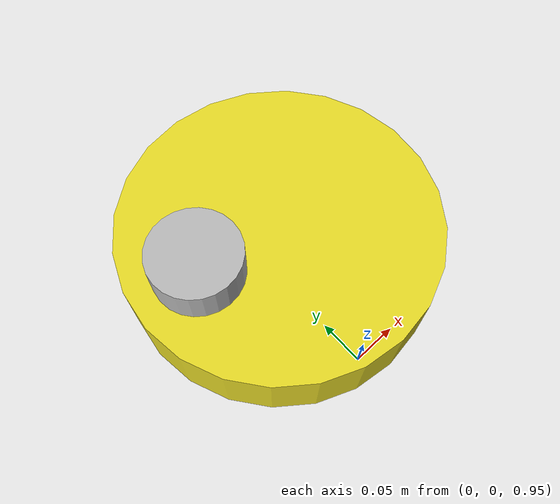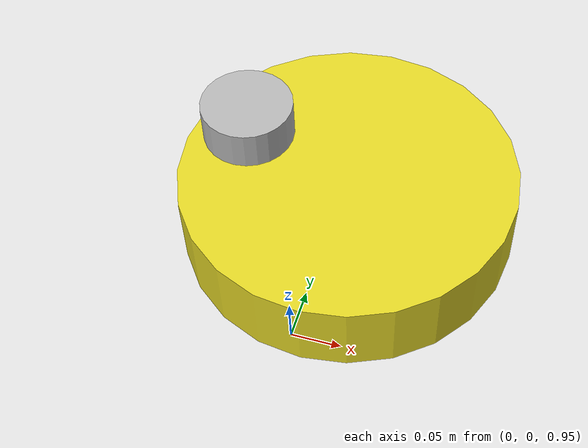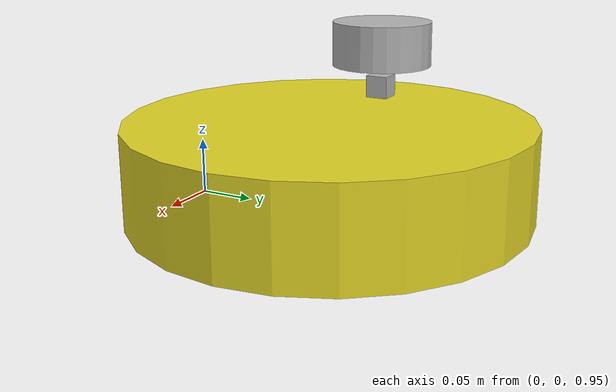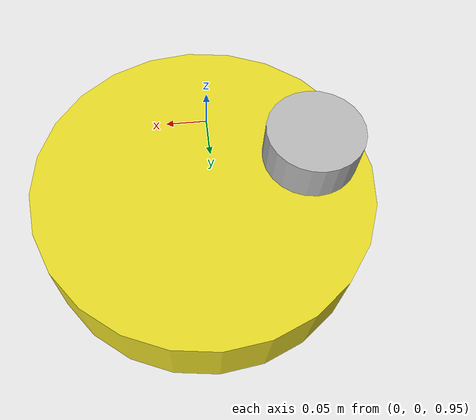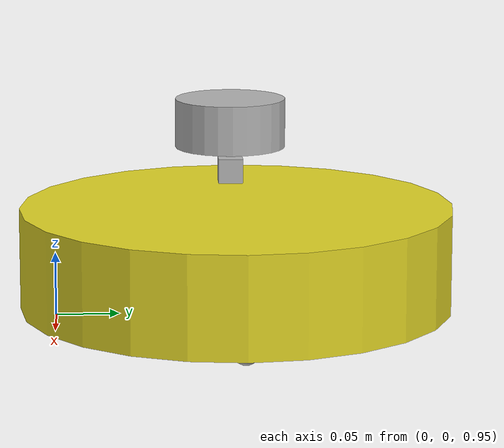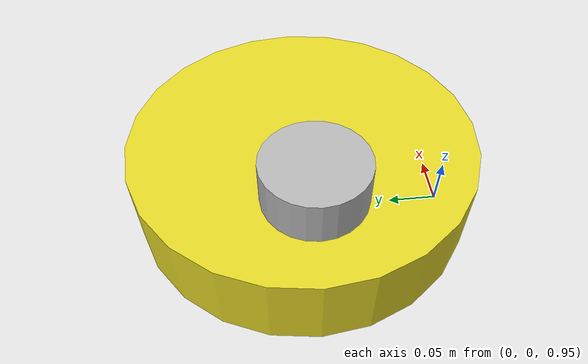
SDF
<sdf version="1.6">
 <world name="default">
  <light name="sun" type="directional">
   <pose>0 0 10 0 -0 0</pose>
   <diffuse>0.8 0.8 0.8 1</diffuse>
   <specular>0.2 0.2 0.2 1</specular>
   <attenuation>
    <range>1000</range>
    <constant>0.9</constant>
    <linear>0.01</linear>
    <quadratic>0.001</quadratic>
   </attenuation>
   <direction>-0.5 0.1 -0.9</direction>
  </light>
  <model name="ground_plane">
   <static>1</static>
   <link name="link">
    <collision name="collision">
     <geometry><plane><normal>0 0 1</normal><size>100 100</size></plane></geometry>
     <surface>
      <contact><collide_bitmask>65535</collide_bitmask></contact>
      <friction><ode><mu>100</mu><mu2>50</mu2></ode></friction>
     </surface>
    </collision>
    <visual name="visual">
     <cast_shadows>0</cast_shadows>
     <geometry><plane><normal>0 0 1</normal><size>100 100</size></plane></geometry>
     <material>
      <script><uri>file://media/materials/scripts/gazebo.material</uri><name>Gazebo/Grey</name></script>
     </material>
    </visual>
   </link>
  </model>
  <physics name="default_physics" default="0" type="ode">
   <max_step_size>0.01</max_step_size>
   <real_time_factor>1</real_time_factor>
   <real_time_update_rate>100</real_time_update_rate>
  </physics>
  <gravity>0 0 -9.8</gravity>
  <magnetic_field>6e-06 2.3e-05 -4.2e-05</magnetic_field>
  <atmosphere type="adiabatic"/>
  <scene><ambient>0.4 0.4 0.4 1</ambient><background>0.7 0.7 0.7 1</background><shadows>1</shadows></scene>
  <audio><device>default</device></audio>
  <spherical_coordinates>
   <surface_model>EARTH_WGS84</surface_model>
   <latitude_deg>0</latitude_deg>
   <longitude_deg>0</longitude_deg>
   <elevation>0</elevation>
   <heading_deg>0</heading_deg>
  </spherical_coordinates>
  <model name="mobile_base">
   <link name="base_link">
    <inertial>
     <pose>-1e-05 0 1e-06 0 -0 0</pose>
     <mass>10.003</mass>
     <inertia>
      <ixx>0.0802938</ixx>
      <ixy>0</ixy>
      <ixz>5.09021e-06</ixz>
      <iyy>0.0802646</iyy>
      <iyz>-3.36272e-19</iyz>
      <izz>0.144551</izz>
     </inertia>
    </inertial>
    <collision name="base_link_fixed_joint_lump__chassis_collision">
     <geometry><cylinder><length>0.08</length><radius>0.17</radius></cylinder></geometry>
    </collision>
    <collision name="base_link_fixed_joint_lump__left_axis_collision_1">
     <pose>0 0.14 -0.02 -1.5708 0 0</pose>
     <geometry><cylinder><length>0.02</length><radius>0.0025</radius></cylinder></geometry>
    </collision>
    <collision name="base_link_fixed_joint_lump__right_axis_collision_2">
     <pose>0 -0.14 -0.02 -1.5708 0 0</pose>
     <geometry><cylinder><length>0.02</length><radius>0.0025</radius></cylinder></geometry>
    </collision>
    <collision name="base_link_fixed_joint_lump__hokuyo_laser_link_collision_3">
     <pose>-0.1016 0 0.0889 0 0 -3.14159</pose>
     <geometry><cylinder><length>0.04</length><radius>0.045</radius></cylinder></geometry>
    </collision>
    <collision name="base_link_fixed_joint_lump__imu_sensor_link_collision_4">
     <pose>-0.1 0 0.05 0 -0 0</pose>
     <geometry><box><size>0.02 0.02 0.02</size></box></geometry>
    </collision>
    <visual name="base_link_fixed_joint_lump__chassis_visual">
     <geometry><cylinder><length>0.08</length><radius>0.17</radius></cylinder></geometry>
     <material>
      <script><name>Gazebo/Yellow</name><uri>file://media/materials/scripts/gazebo.material</uri></script>
     </material>
    </visual>
    <visual name="base_link_fixed_joint_lump__left_axis_visual_1">
     <pose>0 0.14 -0.02 -1.5708 0 0</pose>
     <geometry><cylinder><length>0.02</length><radius>0.0025</radius></cylinder></geometry>
    </visual>
    <visual name="base_link_fixed_joint_lump__right_axis_visual_2">
     <pose>0 -0.14 -0.02 -1.5708 0 0</pose>
     <geometry><cylinder><length>0.02</length><radius>0.0025</radius></cylinder></geometry>
    </visual>
    <visual name="base_link_fixed_joint_lump__hokuyo_laser_link_visual_3">
     <pose>-0.1016 0 0.0889 0 0 -3.14159</pose>
     <geometry><cylinder><length>0.04</length><radius>0.045</radius></cylinder></geometry>
     <material><script><uri>__default__</uri><name>__default__</name></script></material>
    </visual>
    <visual name="base_link_fixed_joint_lump__imu_sensor_link_visual_4">
     <pose>-0.1 0 0.05 0 -0 0</pose>
     <geometry><box><size>0.02 0.02 0.02</size></box></geometry>
     <material><script><uri>__default__</uri><name>__default__</name></script></material>
    </visual>
    <sensor name="head_hokuyo_sensor" type="ray">
     <visualize>0</visualize>
     <update_rate>5</update_rate>
     <ray>
      <scan>
       <horizontal>
        <samples>361</samples>
        <resolution>1</resolution>
        <min_angle>-3.14159</min_angle>
        <max_angle>3.14159</max_angle>
       </horizontal>
       <vertical><samples>1</samples><min_angle>0</min_angle><max_angle>0</max_angle></vertical>
      </scan>
      <range><min>0.2</min><max>5</max><resolution>0.36</resolution></range>
      <noise><type>gaussian</type><mean>0</mean><stddev>0.01</stddev></noise>
     </ray>
     <plugin name="gazebo_ros_head_hokuyo_controller" filename="libgazebo_ros_laser.so">
      <topicName>scan</topicName>
      <frameName>hokuyo_laser_link</frameName>
      <robotNamespace>/</robotNamespace>
     </plugin>
     <pose>-0.1016 0 0.0889 0 0 -3.14159</pose>
    </sensor>
    <sensor name="imu_sensor" type="imu">
     <always_on>1</always_on>
     <update_rate>100</update_rate>
     <visualize>1</visualize>
     <topic>__default_topic__</topic>
     <plugin name="imu_plugin" filename="libgazebo_ros_imu_sensor.so">
      <topicName>imu_data</topicName>
      <bodyName>imu_sensor_link</bodyName>
      <updateRateHZ>10.0</updateRateHZ>
      <gaussianNoise>0.0</gaussianNoise>
      <xyzOffset>0 0 0</xyzOffset>
      <rpyOffset>0 0 0</rpyOffset>
      <frameName>base_link</frameName>
      <robotNamespace>/</robotNamespace>
     </plugin>
     <pose>-0.1 0 0.05 0 -0 0</pose>
    </sensor>
   </link>
   <link name="left_wheel_link">
    <pose>0 0.14 -0.02 0 -0 0</pose>
    <inertial>
     <pose>0 0.01 0 -1.5708 0 0</pose>
     <mass>0.5</mass>
     <inertia>
      <ixx>0.000129167</ixx>
      <ixy>0</ixy>
      <ixz>0</ixz>
      <iyy>0.000129167</iyy>
      <iyz>0</iyz>
      <izz>3.75e-05</izz>
     </inertia>
    </inertial>
    <collision name="left_wheel_link_collision">
     <pose>0 0 0 -1.5708 0 0</pose>
     <geometry><cylinder><length>0.02</length><radius>0.03</radius></cylinder></geometry>
     <surface>
      <contact><ode><kp>1e+07</kp><kd>1</kd><min_depth>0.0001</min_depth></ode></contact>
      <friction><ode><mu>50</mu><mu2>10</mu2><fdir1>1 0 0</fdir1></ode></friction>
     </surface>
     <max_contacts>1</max_contacts>
    </collision>
    <visual name="left_wheel_link_visual">
     <pose>0 0 0 -1.5708 0 0</pose>
     <geometry><cylinder><length>0.02</length><radius>0.03</radius></cylinder></geometry>
     <material>
      <script><name>Gazebo/Grey</name><uri>file://media/materials/scripts/gazebo.material</uri></script>
     </material>
    </visual>
   </link>
   <joint name="left_wheel_rot_joint" type="revolute">
    <child>left_wheel_link</child>
    <parent>base_link</parent>
    <axis>
     <xyz>0 1 0</xyz>
     <limit><lower>-1e+16</lower><upper>1e+16</upper></limit>
     <dynamics><spring_reference>0</spring_reference><spring_stiffness>0</spring_stiffness></dynamics>
     <use_parent_model_frame>1</use_parent_model_frame>
    </axis>
   </joint>
   <link name="right_wheel_link">
    <pose>0 -0.14 -0.02 0 -0 0</pose>
    <inertial>
     <pose>0 0.01 0 -1.5708 0 0</pose>
     <mass>0.5</mass>
     <inertia>
      <ixx>0.000129167</ixx>
      <ixy>0</ixy>
      <ixz>0</ixz>
      <iyy>0.000129167</iyy>
      <iyz>0</iyz>
      <izz>3.75e-05</izz>
     </inertia>
    </inertial>
    <collision name="right_wheel_link_collision">
     <pose>0 0 0 -1.5708 0 0</pose>
     <geometry><cylinder><length>0.02</length><radius>0.03</radius></cylinder></geometry>
     <surface>
      <contact><ode><kp>1e+07</kp><kd>1</kd><min_depth>0.0001</min_depth></ode></contact>
      <friction><ode><mu>50</mu><mu2>10</mu2><fdir1>1 0 0</fdir1></ode></friction>
     </surface>
     <max_contacts>1</max_contacts>
    </collision>
    <visual name="right_wheel_link_visual">
     <pose>0 0 0 -1.5708 0 0</pose>
     <geometry><cylinder><length>0.02</length><radius>0.03</radius></cylinder></geometry>
     <material>
      <script><name>Gazebo/Grey</name><uri>file://media/materials/scripts/gazebo.material</uri></script>
     </material>
    </visual>
   </link>
   <joint name="right_wheel_rot_joint" type="revolute">
    <child>right_wheel_link</child>
    <parent>base_link</parent>
    <axis>
     <xyz>0 1 0</xyz>
     <limit><lower>-1e+16</lower><upper>1e+16</upper></limit>
     <dynamics><spring_reference>0</spring_reference><spring_stiffness>0</spring_stiffness></dynamics>
     <use_parent_model_frame>1</use_parent_model_frame>
    </axis>
   </joint>
   <link name="sphere1">
    <pose>0.14 0 -0.04 0 -0 0</pose>
    <inertial>
     <mass>0.3</mass>
     <inertia><ixx>1.2e-05</ixx><ixy>0</ixy><ixz>0</ixz><iyy>1.2e-05</iyy><iyz>0</iyz><izz>1.2e-05</izz></inertia>
    </inertial>
    <collision name="sphere1_collision">
     <geometry><sphere><radius>0.01</radius></sphere></geometry>
     <surface>
      <contact><ode><kp>1e+07</kp><kd>1</kd><min_depth>0.0001</min_depth></ode></contact>
      <friction><ode><mu>0</mu><mu2>0</mu2><fdir1>1 0 0</fdir1></ode></friction>
     </surface>
     <max_contacts>1</max_contacts>
    </collision>
    <visual name="sphere1_visual">
     <geometry><sphere><radius>0.01</radius></sphere></geometry>
     <material>
      <script><name>Gazebo/Grey</name><uri>file://media/materials/scripts/gazebo.material</uri></script>
     </material>
    </visual>
   </link>
   <joint name="sphere_joint1" type="revolute">
    <child>sphere1</child>
    <parent>base_link</parent>
    <axis>
     <xyz>0 0 1</xyz>
     <limit><lower>0</lower><upper>0</upper><effort>100</effort><velocity>100</velocity></limit>
     <dynamics><spring_reference>0</spring_reference><spring_stiffness>0</spring_stiffness></dynamics>
     <use_parent_model_frame>1</use_parent_model_frame>
    </axis>
   </joint>
   <link name="sphere2">
    <pose>-0.14 0 -0.04 0 -0 0</pose>
    <inertial>
     <mass>0.3</mass>
     <inertia><ixx>1.2e-05</ixx><ixy>0</ixy><ixz>0</ixz><iyy>1.2e-05</iyy><iyz>0</iyz><izz>1.2e-05</izz></inertia>
    </inertial>
    <collision name="sphere2_collision">
     <geometry><sphere><radius>0.01</radius></sphere></geometry>
     <surface>
      <contact><ode><kp>1e+07</kp><kd>1</kd><min_depth>0.0001</min_depth></ode></contact>
      <friction><ode><mu>0</mu><mu2>0</mu2><fdir1>1 0 0</fdir1></ode></friction>
     </surface>
     <max_contacts>1</max_contacts>
    </collision>
    <visual name="sphere2_visual">
     <geometry><sphere><radius>0.01</radius></sphere></geometry>
     <material>
      <script><name>Gazebo/Grey</name><uri>file://media/materials/scripts/gazebo.material</uri></script>
     </material>
    </visual>
   </link>
   <joint name="sphere_joint2" type="revolute">
    <child>sphere2</child>
    <parent>base_link</parent>
    <axis>
     <xyz>0 0 1</xyz>
     <limit><lower>0</lower><upper>0</upper><effort>100</effort><velocity>100</velocity></limit>
     <dynamics><spring_reference>0</spring_reference><spring_stiffness>0</spring_stiffness></dynamics>
     <use_parent_model_frame>1</use_parent_model_frame>
    </axis>
   </joint>
   <static>0</static>
   <plugin name="differential_drive_controller" filename="libgazebo_ros_diff_drive.so">
    <rosDebugLevel>Debug</rosDebugLevel>
    <publishWheelTF>0</publishWheelTF>
    <publishWheelJointState>1</publishWheelJointState>
    <alwaysOn>1</alwaysOn>
    <leftJoint>left_wheel_rot_joint</leftJoint>
    <rightJoint>right_wheel_rot_joint</rightJoint>
    <wheelSeparation>0.28</wheelSeparation>
    <wheelDiameter>0.06</wheelDiameter>
    <torque>20</torque>
    <wheelAcceleration>1.8</wheelAcceleration>
    <commandTopic>cmd_vel</commandTopic>
    <odometryTopic>odom</odometryTopic>
    <odometryFrame>odom</odometryFrame>
    <odometrySource>encoder</odometrySource>
    <robotBaseFrame>base_link</robotBaseFrame>
    <updateRate>10.0</updateRate>
    <legacyMode>0</legacyMode>
    <robotNamespace>/</robotNamespace>
   </plugin>
   <plugin name="joint_state_publisher" filename="libgazebo_ros_joint_state_publisher.so">
    <jointName>left_wheel_rot_joint, right_wheel_rot_joint</jointName>
    <updateRate>10.0</updateRate>
    <alwaysOn>1</alwaysOn>
    <robotNamespace>/</robotNamespace>
   </plugin>
   <plugin name="imu_plugin" filename="libgazebo_ros_imu.so">
    <bodyName>base_link</bodyName>
    <updateRate>100.0</updateRate>
    <topicName>imu_data</topicName>
    <serviceName>imu_service</serviceName>
    <gaussianNoise>0.1</gaussianNoise>
    <xyzOffset>0 0 0</xyzOffset>
    <rpyOffset>0 0 0</rpyOffset>
    <robotNamespace>/</robotNamespace>
   </plugin>
   <pose>0.018 0.142469 1 0 -0  0</pose>
  </model>
 </world>
</sdf>
